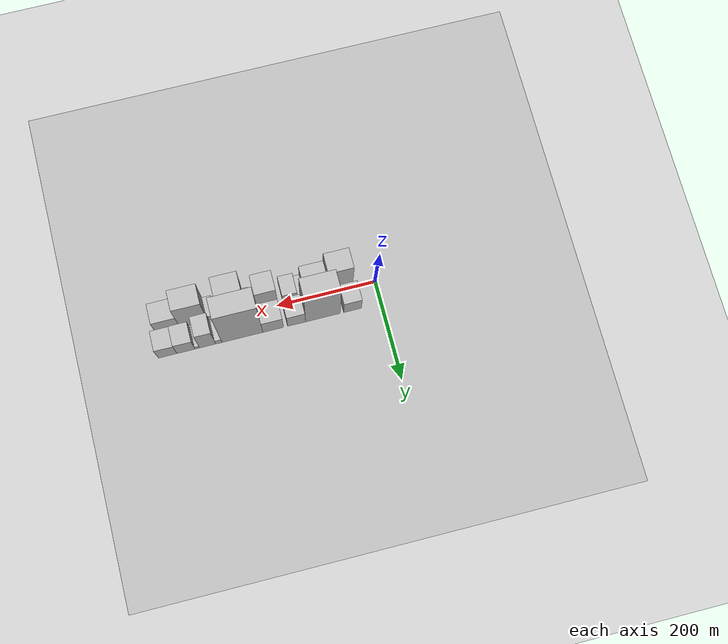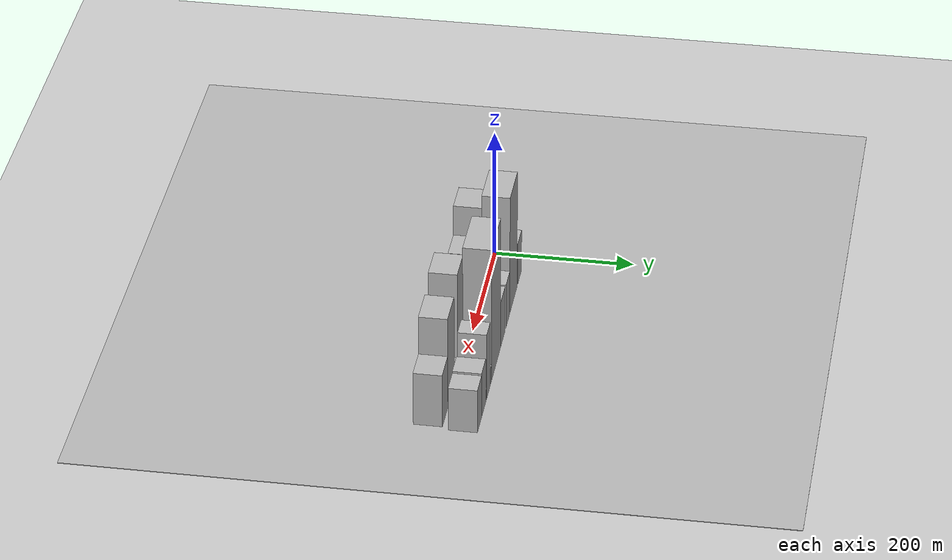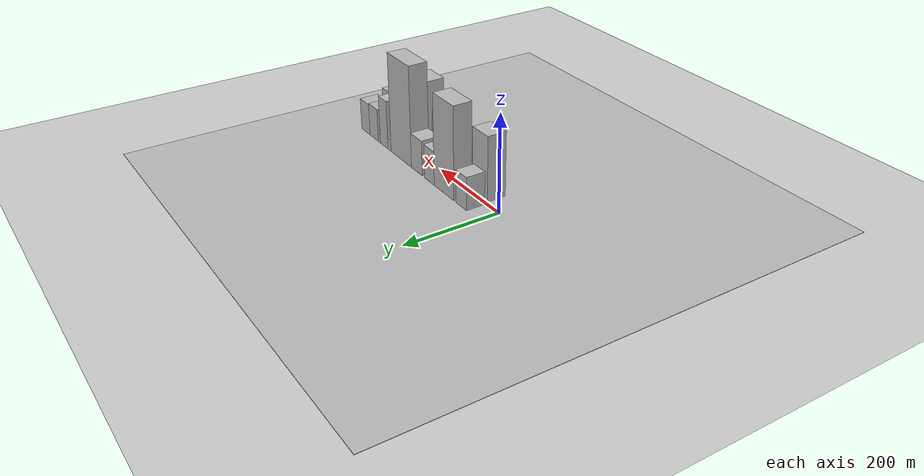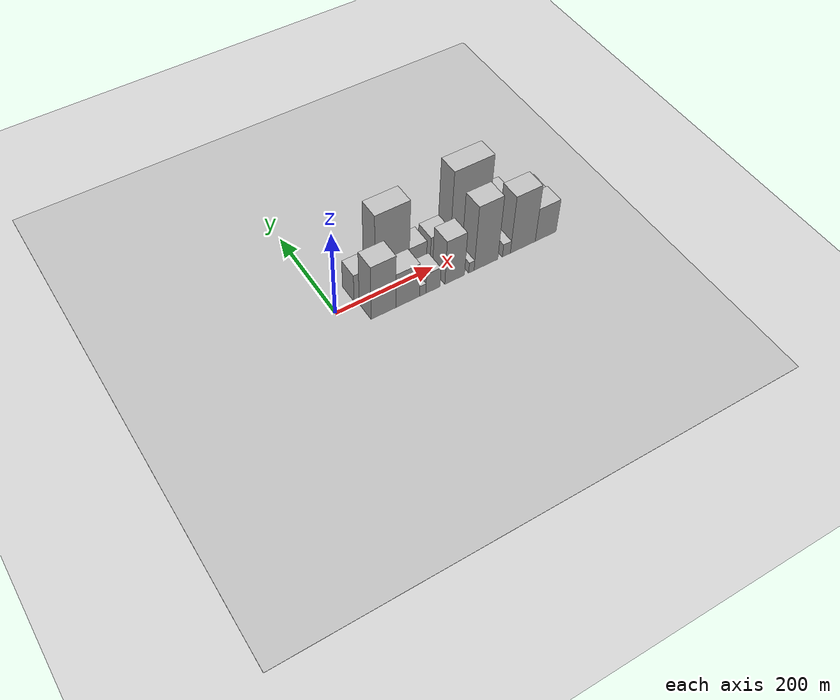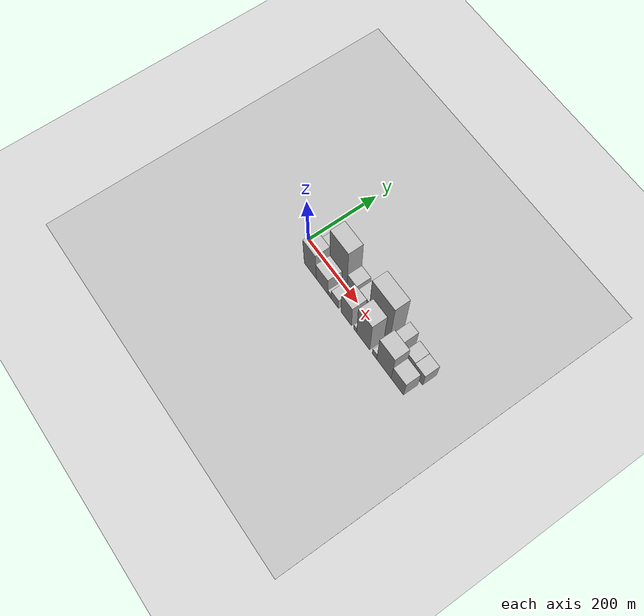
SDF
<?xml version="1.0" encoding="utf-8"?>

<sdf version="1.6">

   <world name="default">

      <gui fullscreen="0">

         <camera name="user_camera">

            <pose>-15 0 4.57585 0 0 0</pose>

            <view_controller>orbit</view_controller>

         </camera>

      </gui>

      <scene>

         <sky>

           <clouds>

             <speed>12</speed>

           </clouds>

         </sky>

         <ambient>0.4 0.4 0.4 1</ambient>

         <background>0.7 0.7 0.7 1</background>

         <shadows>1</shadows>

      </scene>

      <gravity>0 0 -9.8066</gravity>

      <magnetic_field>6e-06 2.3e-05 -4.2e-05</magnetic_field>

      <physics default="0" name="default_physics" type="ode">

         <ode>

            <solver>

               <type>quick</type>

               <iters>10</iters>

               <sor>1.0</sor>

               <use_dynamic_moi_rescaling>0</use_dynamic_moi_rescaling>

            </solver>

            <constraints>

               <cfm>0</cfm>

               <erp>0.2</erp>

               <contact_max_correcting_vel>100</contact_max_correcting_vel>

               <contact_surface_layer>0.001</contact_surface_layer>

            </constraints>

         </ode>

         <max_step_size>0.004</max_step_size>

         <real_time_factor>1</real_time_factor>

         <real_time_update_rate>250</real_time_update_rate>

      </physics>

      <light name="sun" type="directional">

         <cast_shadows>1</cast_shadows>

         <pose>0 0 10 0 0 0</pose>

         <diffuse>0.8 0.8 0.8 1</diffuse>

         <specular>0.2 0.2 0.2 1</specular>

         <attenuation>

            <range>1000</range>

            <constant>0.9</constant>

            <linear>0.01</linear>

            <quadratic>0.001</quadratic>

         </attenuation>

         <direction>-0.5 0.1 -0.9</direction>

      </light>

      <include>

         <name>ground_plane_1</name>

         <uri>model://HANNAS_ground_plane</uri>

         <pose>0 0 0  0 0 0</pose>

      </include>

      <include>

         <name>ground_plane_2</name>

         <uri>model://HANNAS_ground_plane</uri>

         <pose>100 0 0  0 0 0</pose>

      </include>

      <model name="building_1">

         <static>1</static>

         <pose frame="">57.9258 24.5000 0 0.000000 0.000000 1.570796</pose>

         <link name="link">

            <pose frame="">0 0 34.50 0 0 0</pose>

            <collision name="collision">

               <geometry>

                  <box>

                     <size>40.0000 35.8517 69.0000</size>

                  </box>

               </geometry>

               <max_contacts>10</max_contacts>

               <surface>

                  <contact>

                     <ode/>

                  </contact>

                  <bounce/>

                  <friction>

                     <torsional>

                        <ode/>

                     </torsional>

                     <ode/>

                  </friction>

               </surface>

            </collision>

            <visual name="visual">

               <cast_shadows>0</cast_shadows>

               <geometry>

                  <box>

                     <size>40.0000 35.8517 69.0000</size>

                  </box>

               </geometry>

               <material>

                  <script>

                     <uri>model://HANNAS_wall/materials/scripts</uri>

                     <uri>model://HANNAS_wall/materials/textures</uri>

                     <name>vrc/HANNAS_wall</name>

                  </script>

               </material>

            </visual>

            <self_collide>0</self_collide>

            <enable_wind>0</enable_wind>

            <kinematic>0</kinematic>

         </link>

      </model>

      <model name="building_2">

         <static>1</static>

         <pose frame="">117.6256 24.5000 0 0.000000 0.000000 1.570796</pose>

         <link name="link">

            <pose frame="">0 0 96.00 0 0 0</pose>

            <collision name="collision">

               <geometry>

                  <box>

                     <size>40.0000 69.5479 192.0000</size>

                  </box>

               </geometry>

               <max_contacts>10</max_contacts>

               <surface>

                  <contact>

                     <ode/>

                  </contact>

                  <bounce/>

                  <friction>

                     <torsional>

                        <ode/>

                     </torsional>

                     <ode/>

                  </friction>

               </surface>

            </collision>

            <visual name="visual">

               <cast_shadows>0</cast_shadows>

               <geometry>

                  <box>

                     <size>40.0000 69.5479 192.0000</size>

                  </box>

               </geometry>

               <material>

                  <script>

                     <uri>model://HANNAS_wall/materials/scripts</uri>

                     <uri>model://HANNAS_wall/materials/textures</uri>

                     <name>vrc/HANNAS_wall</name>

                  </script>

               </material>

            </visual>

            <self_collide>0</self_collide>

            <enable_wind>0</enable_wind>

            <kinematic>0</kinematic>

         </link>

      </model>

      <model name="building_3">

         <static>1</static>

         <pose frame="">170.5187 24.5000 0 0.000000 0.000000 1.570796</pose>

         <link name="link">

            <pose frame="">0 0 36.00 0 0 0</pose>

            <collision name="collision">

               <geometry>

                  <box>

                     <size>40.0000 36.2383 72.0000</size>

                  </box>

               </geometry>

               <max_contacts>10</max_contacts>

               <surface>

                  <contact>

                     <ode/>

                  </contact>

                  <bounce/>

                  <friction>

                     <torsional>

                        <ode/>

                     </torsional>

                     <ode/>

                  </friction>

               </surface>

            </collision>

            <visual name="visual">

               <cast_shadows>0</cast_shadows>

               <geometry>

                  <box>

                     <size>40.0000 36.2383 72.0000</size>

                  </box>

               </geometry>

               <material>

                  <script>

                     <uri>model://HANNAS_wall/materials/scripts</uri>

                     <uri>model://HANNAS_wall/materials/textures</uri>

                     <name>vrc/HANNAS_wall</name>

                  </script>

               </material>

            </visual>

            <self_collide>0</self_collide>

            <enable_wind>0</enable_wind>

            <kinematic>0</kinematic>

         </link>

      </model>

      <model name="building_4">

         <static>1</static>

         <pose frame="">217.3484 24.5000 0 0.000000 0.000000 1.570796</pose>

         <link name="link">

            <pose frame="">0 0 37.50 0 0 0</pose>

            <collision name="collision">

               <geometry>

                  <box>

                     <size>40.0000 41.4212 75.0000</size>

                  </box>

               </geometry>

               <max_contacts>10</max_contacts>

               <surface>

                  <contact>

                     <ode/>

                  </contact>

                  <bounce/>

                  <friction>

                     <torsional>

                        <ode/>

                     </torsional>

                     <ode/>

                  </friction>

               </surface>

            </collision>

            <visual name="visual">

               <cast_shadows>0</cast_shadows>

               <geometry>

                  <box>

                     <size>40.0000 41.4212 75.0000</size>

                  </box>

               </geometry>

               <material>

                  <script>

                     <uri>model://HANNAS_wall/materials/scripts</uri>

                     <uri>model://HANNAS_wall/materials/textures</uri>

                     <name>vrc/HANNAS_wall</name>

                  </script>

               </material>

            </visual>

            <self_collide>0</self_collide>

            <enable_wind>0</enable_wind>

            <kinematic>0</kinematic>

         </link>

      </model>

      <model name="building_5">

         <static>1</static>

         <pose frame="">278.8201 24.5000 0 0.000000 0.000000 1.570796</pose>

         <link name="link">

            <pose frame="">0 0 106.50 0 0 0</pose>

            <collision name="collision">

               <geometry>

                  <box>

                     <size>40.0000 81.5222 213.0000</size>

                  </box>

               </geometry>

               <max_contacts>10</max_contacts>

               <surface>

                  <contact>

                     <ode/>

                  </contact>

                  <bounce/>

                  <friction>

                     <torsional>

                        <ode/>

                     </torsional>

                     <ode/>

                  </friction>

               </surface>

            </collision>

            <visual name="visual">

               <cast_shadows>0</cast_shadows>

               <geometry>

                  <box>

                     <size>40.0000 81.5222 213.0000</size>

                  </box>

               </geometry>

               <material>

                  <script>

                     <uri>model://HANNAS_wall/materials/scripts</uri>

                     <uri>model://HANNAS_wall/materials/textures</uri>

                     <name>vrc/HANNAS_wall</name>

                  </script>

               </material>

            </visual>

            <self_collide>0</self_collide>

            <enable_wind>0</enable_wind>

            <kinematic>0</kinematic>

         </link>

      </model>

      <model name="building_6">

         <static>1</static>

         <pose frame="">325.9432 24.5000 0 0.000000 0.000000 1.570796</pose>

         <link name="link">

            <pose frame="">0 0 13.50 0 0 0</pose>

            <collision name="collision">

               <geometry>

                  <box>

                     <size>40.0000 12.7240 27.0000</size>

                  </box>

               </geometry>

               <max_contacts>10</max_contacts>

               <surface>

                  <contact>

                     <ode/>

                  </contact>

                  <bounce/>

                  <friction>

                     <torsional>

                        <ode/>

                     </torsional>

                     <ode/>

                  </friction>

               </surface>

            </collision>

            <visual name="visual">

               <cast_shadows>0</cast_shadows>

               <geometry>

                  <box>

                     <size>40.0000 12.7240 27.0000</size>

                  </box>

               </geometry>

               <material>

                  <script>

                     <uri>model://HANNAS_wall/materials/scripts</uri>

                     <uri>model://HANNAS_wall/materials/textures</uri>

                     <name>vrc/HANNAS_wall</name>

                  </script>

               </material>

            </visual>

            <self_collide>0</self_collide>

            <enable_wind>0</enable_wind>

            <kinematic>0</kinematic>

         </link>

      </model>

      <model name="building_7">

         <static>1</static>

         <pose frame="">348.2056 24.5000 0 0.000000 0.000000 1.570796</pose>

         <link name="link">

            <pose frame="">0 0 52.50 0 0 0</pose>

            <collision name="collision">

               <geometry>

                  <box>

                     <size>40.0000 31.8008 105.0000</size>

                  </box>

               </geometry>

               <max_contacts>10</max_contacts>

               <surface>

                  <contact>

                     <ode/>

                  </contact>

                  <bounce/>

                  <friction>

                     <torsional>

                        <ode/>

                     </torsional>

                     <ode/>

                  </friction>

               </surface>

            </collision>

            <visual name="visual">

               <cast_shadows>0</cast_shadows>

               <geometry>

                  <box>

                     <size>40.0000 31.8008 105.0000</size>

                  </box>

               </geometry>

               <material>

                  <script>

                     <uri>model://HANNAS_wall/materials/scripts</uri>

                     <uri>model://HANNAS_wall/materials/textures</uri>

                     <name>vrc/HANNAS_wall</name>

                  </script>

               </material>

            </visual>

            <self_collide>0</self_collide>

            <enable_wind>0</enable_wind>

            <kinematic>0</kinematic>

         </link>

      </model>

      <model name="building_8">

         <static>1</static>

         <pose frame="">368.5234 24.5000 0 0.000000 0.000000 1.570796</pose>

         <link name="link">

            <pose frame="">0 0 9.00 0 0 0</pose>

            <collision name="collision">

               <geometry>

                  <box>

                     <size>40.0000 8.8349 18.0000</size>

                  </box>

               </geometry>

               <max_contacts>10</max_contacts>

               <surface>

                  <contact>

                     <ode/>

                  </contact>

                  <bounce/>

                  <friction>

                     <torsional>

                        <ode/>

                     </torsional>

                     <ode/>

                  </friction>

               </surface>

            </collision>

            <visual name="visual">

               <cast_shadows>0</cast_shadows>

               <geometry>

                  <box>

                     <size>40.0000 8.8349 18.0000</size>

                  </box>

               </geometry>

               <material>

                  <script>

                     <uri>model://HANNAS_wall/materials/scripts</uri>

                     <uri>model://HANNAS_wall/materials/textures</uri>

                     <name>vrc/HANNAS_wall</name>

                  </script>

               </material>

            </visual>

            <self_collide>0</self_collide>

            <enable_wind>0</enable_wind>

            <kinematic>0</kinematic>

         </link>

      </model>

      <model name="building_9">

         <static>1</static>

         <pose frame="">390.9940 24.5000 0 0.000000 0.000000 1.570796</pose>

         <link name="link">

            <pose frame="">0 0 36.00 0 0 0</pose>

            <collision name="collision">

               <geometry>

                  <box>

                     <size>40.0000 36.1063 72.0000</size>

                  </box>

               </geometry>

               <max_contacts>10</max_contacts>

               <surface>

                  <contact>

                     <ode/>

                  </contact>

                  <bounce/>

                  <friction>

                     <torsional>

                        <ode/>

                     </torsional>

                     <ode/>

                  </friction>

               </surface>

            </collision>

            <visual name="visual">

               <cast_shadows>0</cast_shadows>

               <geometry>

                  <box>

                     <size>40.0000 36.1063 72.0000</size>

                  </box>

               </geometry>

               <material>

                  <script>

                     <uri>model://HANNAS_wall/materials/scripts</uri>

                     <uri>model://HANNAS_wall/materials/textures</uri>

                     <name>vrc/HANNAS_wall</name>

                  </script>

               </material>

            </visual>

            <self_collide>0</self_collide>

            <enable_wind>0</enable_wind>

            <kinematic>0</kinematic>

         </link>

      </model>

      <model name="building_10">

         <static>1</static>

         <pose frame="">427.2723 24.5000 0 0.000000 0.000000 1.570796</pose>

         <link name="link">

            <pose frame="">0 0 34.50 0 0 0</pose>

            <collision name="collision">

               <geometry>

                  <box>

                     <size>40.0000 36.4502 69.0000</size>

                  </box>

               </geometry>

               <max_contacts>10</max_contacts>

               <surface>

                  <contact>

                     <ode/>

                  </contact>

                  <bounce/>

                  <friction>

                     <torsional>

                        <ode/>

                     </torsional>

                     <ode/>

                  </friction>

               </surface>

            </collision>

            <visual name="visual">

               <cast_shadows>0</cast_shadows>

               <geometry>

                  <box>

                     <size>40.0000 36.4502 69.0000</size>

                  </box>

               </geometry>

               <material>

                  <script>

                     <uri>model://HANNAS_wall/materials/scripts</uri>

                     <uri>model://HANNAS_wall/materials/textures</uri>

                     <name>vrc/HANNAS_wall</name>

                  </script>

               </material>

            </visual>

            <self_collide>0</self_collide>

            <enable_wind>0</enable_wind>

            <kinematic>0</kinematic>

         </link>

      </model>

      <model name="building_11">

         <static>1</static>

         <pose frame="">69.9052 -24.5000 0 0.000000 0.000000 1.570796</pose>

         <link name="link">

            <pose frame="">0 0 67.50 0 0 0</pose>

            <collision name="collision">

               <geometry>

                  <box>

                     <size>40.0000 49.8104 135.0000</size>

                  </box>

               </geometry>

               <max_contacts>10</max_contacts>

               <surface>

                  <contact>

                     <ode/>

                  </contact>

                  <bounce/>

                  <friction>

                     <torsional>

                        <ode/>

                     </torsional>

                     <ode/>

                  </friction>

               </surface>

            </collision>

            <visual name="visual">

               <cast_shadows>0</cast_shadows>

               <geometry>

                  <box>

                     <size>40.0000 49.8104 135.0000</size>

                  </box>

               </geometry>

               <material>

                  <script>

                     <uri>model://HANNAS_wall/materials/scripts</uri>

                     <uri>model://HANNAS_wall/materials/textures</uri>

                     <name>vrc/HANNAS_wall</name>

                  </script>

               </material>

            </visual>

            <self_collide>0</self_collide>

            <enable_wind>0</enable_wind>

            <kinematic>0</kinematic>

         </link>

      </model>

      <model name="building_12">

         <static>1</static>

         <pose frame="">119.0065 -24.5000 0 0.000000 0.000000 1.570796</pose>

         <link name="link">

            <pose frame="">0 0 43.50 0 0 0</pose>

            <collision name="collision">

               <geometry>

                  <box>

                     <size>40.0000 48.3921 87.0000</size>

                  </box>

               </geometry>

               <max_contacts>10</max_contacts>

               <surface>

                  <contact>

                     <ode/>

                  </contact>

                  <bounce/>

                  <friction>

                     <torsional>

                        <ode/>

                     </torsional>

                     <ode/>

                  </friction>

               </surface>

            </collision>

            <visual name="visual">

               <cast_shadows>0</cast_shadows>

               <geometry>

                  <box>

                     <size>40.0000 48.3921 87.0000</size>

                  </box>

               </geometry>

               <material>

                  <script>

                     <uri>model://HANNAS_wall/materials/scripts</uri>

                     <uri>model://HANNAS_wall/materials/textures</uri>

                     <name>vrc/HANNAS_wall</name>

                  </script>

               </material>

            </visual>

            <self_collide>0</self_collide>

            <enable_wind>0</enable_wind>

            <kinematic>0</kinematic>

         </link>

      </model>

      <model name="building_13">

         <static>1</static>

         <pose frame="">149.8535 -24.5000 0 0.000000 0.000000 1.570796</pose>

         <link name="link">

            <pose frame="">0 0 13.50 0 0 0</pose>

            <collision name="collision">

               <geometry>

                  <box>

                     <size>40.0000 13.3021 27.0000</size>

                  </box>

               </geometry>

               <max_contacts>10</max_contacts>

               <surface>

                  <contact>

                     <ode/>

                  </contact>

                  <bounce/>

                  <friction>

                     <torsional>

                        <ode/>

                     </torsional>

                     <ode/>

                  </friction>

               </surface>

            </collision>

            <visual name="visual">

               <cast_shadows>0</cast_shadows>

               <geometry>

                  <box>

                     <size>40.0000 13.3021 27.0000</size>

                  </box>

               </geometry>

               <material>

                  <script>

                     <uri>model://HANNAS_wall/materials/scripts</uri>

                     <uri>model://HANNAS_wall/materials/textures</uri>

                     <name>vrc/HANNAS_wall</name>

                  </script>

               </material>

            </visual>

            <self_collide>0</self_collide>

            <enable_wind>0</enable_wind>

            <kinematic>0</kinematic>

         </link>

      </model>

      <model name="building_14">

         <static>1</static>

         <pose frame="">171.3643 -24.5000 0 0.000000 0.000000 1.570796</pose>

         <link name="link">

            <pose frame="">0 0 25.50 0 0 0</pose>

            <collision name="collision">

               <geometry>

                  <box>

                     <size>40.0000 29.7194 51.0000</size>

                  </box>

               </geometry>

               <max_contacts>10</max_contacts>

               <surface>

                  <contact>

                     <ode/>

                  </contact>

                  <bounce/>

                  <friction>

                     <torsional>

                        <ode/>

                     </torsional>

                     <ode/>

                  </friction>

               </surface>

            </collision>

            <visual name="visual">

               <cast_shadows>0</cast_shadows>

               <geometry>

                  <box>

                     <size>40.0000 29.7194 51.0000</size>

                  </box>

               </geometry>

               <material>

                  <script>

                     <uri>model://HANNAS_wall/materials/scripts</uri>

                     <uri>model://HANNAS_wall/materials/textures</uri>

                     <name>vrc/HANNAS_wall</name>

                  </script>

               </material>

            </visual>

            <self_collide>0</self_collide>

            <enable_wind>0</enable_wind>

            <kinematic>0</kinematic>

         </link>

      </model>

      <model name="building_15">

         <static>1</static>

         <pose frame="">217.0015 -24.5000 0 0.000000 0.000000 1.570796</pose>

         <link name="link">

            <pose frame="">0 0 55.50 0 0 0</pose>

            <collision name="collision">

               <geometry>

                  <box>

                     <size>40.0000 41.5550 111.0000</size>

                  </box>

               </geometry>

               <max_contacts>10</max_contacts>

               <surface>

                  <contact>

                     <ode/>

                  </contact>

                  <bounce/>

                  <friction>

                     <torsional>

                        <ode/>

                     </torsional>

                     <ode/>

                  </friction>

               </surface>

            </collision>

            <visual name="visual">

               <cast_shadows>0</cast_shadows>

               <geometry>

                  <box>

                     <size>40.0000 41.5550 111.0000</size>

                  </box>

               </geometry>

               <material>

                  <script>

                     <uri>model://HANNAS_wall/materials/scripts</uri>

                     <uri>model://HANNAS_wall/materials/textures</uri>

                     <name>vrc/HANNAS_wall</name>

                  </script>

               </material>

            </visual>

            <self_collide>0</self_collide>

            <enable_wind>0</enable_wind>

            <kinematic>0</kinematic>

         </link>

      </model>

      <model name="building_16">

         <static>1</static>

         <pose frame="">252.5093 -24.5000 0 0.000000 0.000000 1.570796</pose>

         <link name="link">

            <pose frame="">0 0 13.50 0 0 0</pose>

            <collision name="collision">

               <geometry>

                  <box>

                     <size>40.0000 11.4606 27.0000</size>

                  </box>

               </geometry>

               <max_contacts>10</max_contacts>

               <surface>

                  <contact>

                     <ode/>

                  </contact>

                  <bounce/>

                  <friction>

                     <torsional>

                        <ode/>

                     </torsional>

                     <ode/>

                  </friction>

               </surface>

            </collision>

            <visual name="visual">

               <cast_shadows>0</cast_shadows>

               <geometry>

                  <box>

                     <size>40.0000 11.4606 27.0000</size>

                  </box>

               </geometry>

               <material>

                  <script>

                     <uri>model://HANNAS_wall/materials/scripts</uri>

                     <uri>model://HANNAS_wall/materials/textures</uri>

                     <name>vrc/HANNAS_wall</name>

                  </script>

               </material>

            </visual>

            <self_collide>0</self_collide>

            <enable_wind>0</enable_wind>

            <kinematic>0</kinematic>

         </link>

      </model>

      <model name="building_17">

         <static>1</static>

         <pose frame="">283.8891 -24.5000 0 0.000000 0.000000 1.570796</pose>

         <link name="link">

            <pose frame="">0 0 81.00 0 0 0</pose>

            <collision name="collision">

               <geometry>

                  <box>

                     <size>40.0000 51.2989 162.0000</size>

                  </box>

               </geometry>

               <max_contacts>10</max_contacts>

               <surface>

                  <contact>

                     <ode/>

                  </contact>

                  <bounce/>

                  <friction>

                     <torsional>

                        <ode/>

                     </torsional>

                     <ode/>

                  </friction>

               </surface>

            </collision>

            <visual name="visual">

               <cast_shadows>0</cast_shadows>

               <geometry>

                  <box>

                     <size>40.0000 51.2989 162.0000</size>

                  </box>

               </geometry>

               <material>

                  <script>

                     <uri>model://HANNAS_wall/materials/scripts</uri>

                     <uri>model://HANNAS_wall/materials/textures</uri>

                     <name>vrc/HANNAS_wall</name>

                  </script>

               </material>

            </visual>

            <self_collide>0</self_collide>

            <enable_wind>0</enable_wind>

            <kinematic>0</kinematic>

         </link>

      </model>

      <model name="building_18">

         <static>1</static>

         <pose frame="">328.2499 -24.5000 0 0.000000 0.000000 1.570796</pose>

         <link name="link">

            <pose frame="">0 0 16.50 0 0 0</pose>

            <collision name="collision">

               <geometry>

                  <box>

                     <size>40.0000 17.4226 33.0000</size>

                  </box>

               </geometry>

               <max_contacts>10</max_contacts>

               <surface>

                  <contact>

                     <ode/>

                  </contact>

                  <bounce/>

                  <friction>

                     <torsional>

                        <ode/>

                     </torsional>

                     <ode/>

                  </friction>

               </surface>

            </collision>

            <visual name="visual">

               <cast_shadows>0</cast_shadows>

               <geometry>

                  <box>

                     <size>40.0000 17.4226 33.0000</size>

                  </box>

               </geometry>

               <material>

                  <script>

                     <uri>model://HANNAS_wall/materials/scripts</uri>

                     <uri>model://HANNAS_wall/materials/textures</uri>

                     <name>vrc/HANNAS_wall</name>

                  </script>

               </material>

            </visual>

            <self_collide>0</self_collide>

            <enable_wind>0</enable_wind>

            <kinematic>0</kinematic>

         </link>

      </model>

      <model name="building_19">

         <static>1</static>

         <pose frame="">364.5694 -24.5000 0 0.000000 0.000000 1.570796</pose>

         <link name="link">

            <pose frame="">0 0 72.00 0 0 0</pose>

            <collision name="collision">

               <geometry>

                  <box>

                     <size>40.0000 55.2165 144.0000</size>

                  </box>

               </geometry>

               <max_contacts>10</max_contacts>

               <surface>

                  <contact>

                     <ode/>

                  </contact>

                  <bounce/>

                  <friction>

                     <torsional>

                        <ode/>

                     </torsional>

                     <ode/>

                  </friction>

               </surface>

            </collision>

            <visual name="visual">

               <cast_shadows>0</cast_shadows>

               <geometry>

                  <box>

                     <size>40.0000 55.2165 144.0000</size>

                  </box>

               </geometry>

               <material>

                  <script>

                     <uri>model://HANNAS_wall/materials/scripts</uri>

                     <uri>model://HANNAS_wall/materials/textures</uri>

                     <name>vrc/HANNAS_wall</name>

                  </script>

               </material>

            </visual>

            <self_collide>0</self_collide>

            <enable_wind>0</enable_wind>

            <kinematic>0</kinematic>

         </link>

      </model>

      <model name="building_20">

         <static>1</static>

         <pose frame="">415.6383 -24.5000 0 0.000000 0.000000 1.570796</pose>

         <link name="link">

            <pose frame="">0 0 42.00 0 0 0</pose>

            <collision name="collision">

               <geometry>

                  <box>

                     <size>40.0000 46.9212 84.0000</size>

                  </box>

               </geometry>

               <max_contacts>10</max_contacts>

               <surface>

                  <contact>

                     <ode/>

                  </contact>

                  <bounce/>

                  <friction>

                     <torsional>

                        <ode/>

                     </torsional>

                     <ode/>

                  </friction>

               </surface>

            </collision>

            <visual name="visual">

               <cast_shadows>0</cast_shadows>

               <geometry>

                  <box>

                     <size>40.0000 46.9212 84.0000</size>

                  </box>

               </geometry>

               <material>

                  <script>

                     <uri>model://HANNAS_wall/materials/scripts</uri>

                     <uri>model://HANNAS_wall/materials/textures</uri>

                     <name>vrc/HANNAS_wall</name>

                  </script>

               </material>

            </visual>

            <self_collide>0</self_collide>

            <enable_wind>0</enable_wind>

            <kinematic>0</kinematic>

         </link>

      </model>

   </world>

</sdf>

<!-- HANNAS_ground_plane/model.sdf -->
<sdf version="1.4">
<model name="HANNAS_ground_plane">
  <static>true</static>
    <link name="link">
      <collision name="collision">
        <geometry>
          <plane>
            <normal>0 0 1</normal>
            <size>1000 1000</size>
          </plane>
        </geometry>
        <surface>
          <friction>
            <ode>
              <mu>100</mu>
              <mu2>50</mu2>
            </ode>
          </friction>
        </surface>
      </collision>
      <visual name="visual">
        <cast_shadows>false</cast_shadows>
        <geometry>
          <plane>
            <normal>0 0 1</normal>
            <size>1000 1000</size>
          </plane>
        </geometry>
        <material>
          <script>
            <uri>model://HANNAS_ground_plane/materials/scripts/HANNAS_ground_plane.material</uri>
	    <uri>model://HANNAS_ground_plane/materials/textures</uri>
            <name>HANNASGroundPlane/Image</name>
          </script>
        </material>
      </visual>
    </link>
  </model>
</sdf>
